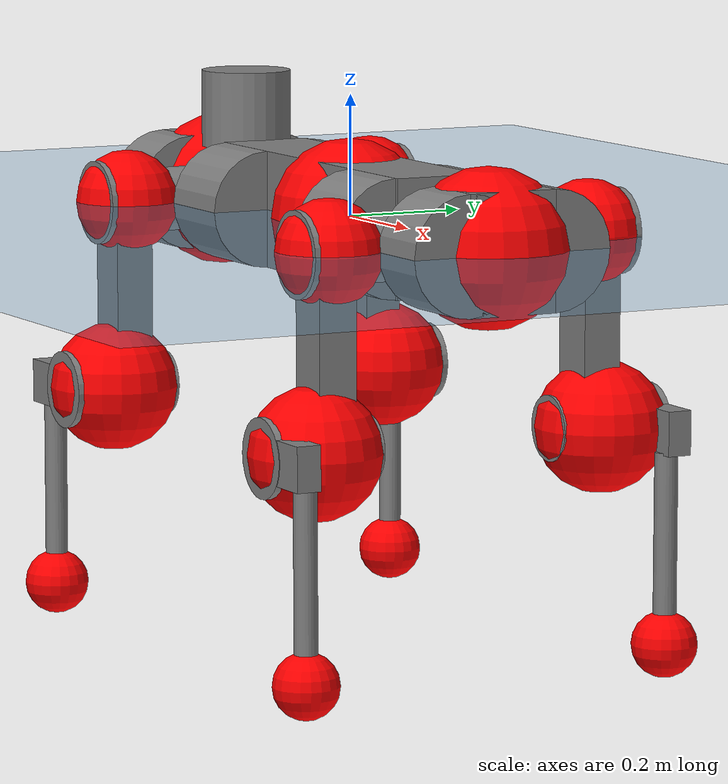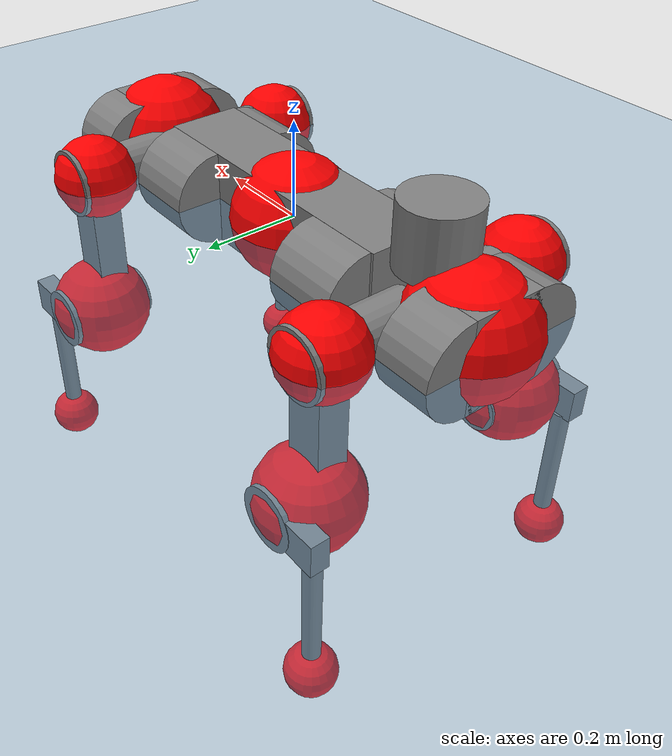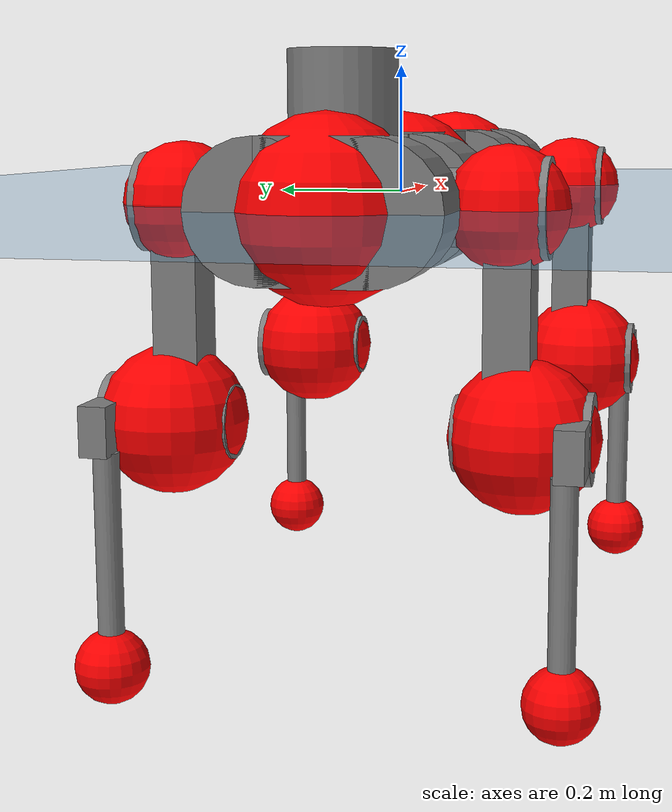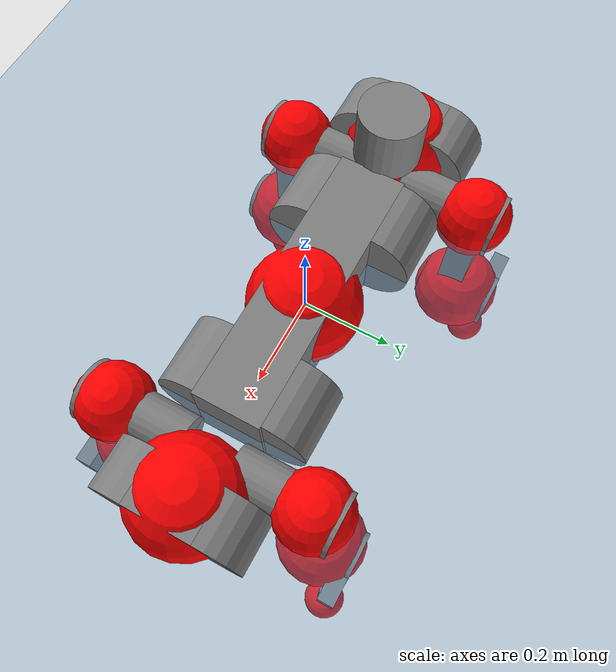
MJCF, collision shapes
<mujoco model="anymal_c">
  <compiler angle="radian" assetdir="assets" balanceinertia="true" inertiafromgeom="false"/>

  <option timestep="0.005" density="1.2" viscosity="2e-05"/>

  <size nkey="1"/>

  <visual>
    <quality shadowsize="8192"/>
    <map shadowclip="0.5"/>
  </visual>

  <default>
    <default class="/">
      <material specular="0" shininess="0.25"/>
      <geom contype="0" conaffinity="0" group="1" solref="-1000 -80"/>
      <site size="0.01 0.005 0.005" group="5"/>
      <general forcelimited="true" forcerange="-80 80" biastype="affine" gainprm="80" biasprm="0 -80 -2"/>
      <default class="anymal_c">
        <joint armature="0.01" damping="0.01" frictionloss="0.1"/>
        <default class="visual">
          <geom type="mesh" group="2"/>
          <default class="visual_zflip"/>
        </default>
        <default class="collision">
          <geom type="cylinder" group="3"/>
          <default class="foot">
            <geom size="0.03 0 0" type="sphere" condim="6" priority="1" friction="0.8 0.02 0.01" solimp="0.015 1 0.03"/>
          </default>
        </default>
      </default>
      <default class="reward_collision_sphere">
        <geom group="5" rgba="1 0 0 1"/>
      </default>
    </default>
  </default>

  <asset>
    <texture type="skybox" colorspace="auto" name="//unnamed_texture_0" builtin="gradient" rgb1="0.95 0.95 0.95" rgb2="0.95 0.95 0.95" width="100" height="600"/>
    <texture type="2d" colorspace="auto" name="texplane" builtin="checker" rgb1="0.345 0.575 0.748" rgb2="0.345 0.575 0.748" markrgb="1 1 1" width="512" height="512"/>
    <texture type="2d" colorspace="linear" name="base" file="base.png"/>
    <texture type="2d" colorspace="linear" name="top_shell" file="top_shell.png"/>
    <texture type="2d" colorspace="linear" name="bottom_shell" file="bottom_shell.png"/>
    <texture type="2d" colorspace="linear" name="remote" file="remote.png"/>
    <texture type="2d" colorspace="linear" name="hatch" file="hatch.png"/>
    <texture type="2d" colorspace="linear" name="handle" file="handle.png"/>
    <texture type="2d" colorspace="linear" name="face" file="face.png"/>
    <texture type="2d" colorspace="linear" name="battery" file="battery.png"/>
    <texture type="2d" colorspace="linear" name="lidar_cage" file="lidar_cage.png"/>
    <texture type="2d" colorspace="linear" name="depth_camera" file="depth_camera.png"/>
    <texture type="2d" colorspace="linear" name="wide_angle_camera" file="wide_angle_camera.png"/>
    <texture type="2d" colorspace="linear" name="lidar" file="lidar.png"/>
    <texture type="2d" colorspace="linear" name="drive" file="drive.png"/>
    <texture type="2d" colorspace="linear" name="hip_l" file="hip_l.png"/>
    <texture type="2d" colorspace="linear" name="shank_l" file="shank_l.png"/>
    <texture type="2d" colorspace="linear" name="foot" file="foot.png"/>
    <texture type="2d" colorspace="linear" name="thigh" file="thigh.png"/>
    <texture type="2d" colorspace="linear" name="shank_r" file="shank_r.png"/>
    <texture type="2d" colorspace="linear" name="hip_r" file="hip_r.png"/>
    <material name="MatPlane" class="/" texture="texplane" texuniform="true" texrepeat="2 2" specular="0.9" shininess="0.5"/>
    <material name="black_plastic" class="/" rgba="0.007 0.007 0.007 1"/>
    <material name="green" class="/" rgba="0.052 0.178 0.033 1"/>
    <material name="red" class="/" rgba="0.178 0.006 0.005 1"/>
    <material name="yellow" class="/" rgba="0.178 0.119 0.006 1"/>
    <material name="lwl" class="/" rgba="0.8 0.8 0.8 1"/>
    <material name="base" class="/" texture="base"/>
    <material name="top_shell" class="/" texture="top_shell"/>
    <material name="bottom_shell" class="/" texture="bottom_shell"/>
    <material name="hip_l" class="/" texture="hip_l"/>
    <material name="thigh" class="/" texture="thigh"/>
    <material name="shank_l" class="/" texture="shank_l"/>
    <material name="foot" class="/" texture="foot"/>
    <material name="hip_r" class="/" texture="hip_r"/>
    <material name="shank" class="/" texture="shank_r"/>
    <material name="hatch" class="/" texture="hatch"/>
    <material name="remote" class="/" texture="remote"/>
    <material name="handle" class="/" texture="handle"/>
    <material name="face" class="/" texture="face"/>
    <material name="depth_camera" class="/" texture="depth_camera"/>
    <material name="wide_angle_camera" class="/" texture="wide_angle_camera"/>
    <material name="battery" class="/" texture="battery"/>
    <material name="lidar_cage" class="/" texture="lidar_cage"/>
    <material name="lidar" class="/" texture="lidar"/>
    <material name="drive" class="/" texture="drive"/>
    <mesh name="base_0" class="/" file="base_0.obj"/>
    <mesh name="base_1" class="/" file="base_1.obj"/>
    <mesh name="base_2" class="/" file="base_2.obj"/>
    <mesh name="base_3" class="/" file="base_3.obj"/>
    <mesh name="base_4" class="/" file="base_4.obj"/>
    <mesh name="base_5" class="/" file="base_5.obj"/>
    <mesh name="top_shell" class="/" file="top_shell.obj"/>
    <mesh name="bottom_shell" class="/" file="bottom_shell.obj"/>
    <mesh name="remote" class="/" file="remote.obj"/>
    <mesh name="handle" class="/" file="handle.obj"/>
    <mesh name="face" class="/" file="face.obj"/>
    <mesh name="wide_angle_camera" class="/" file="wide_angle_camera.obj"/>
    <mesh name="depth_camera" class="/" file="depth_camera.obj"/>
    <mesh name="battery" class="/" file="battery.obj"/>
    <mesh name="lidar_cage" class="/" file="lidar_cage.obj"/>
    <mesh name="lidar" class="/" file="lidar.obj"/>
    <mesh name="drive" class="/" file="drive.obj"/>
    <mesh name="hip_l" class="/" file="hip_l.obj"/>
    <mesh name="thigh" class="/" file="thigh.obj"/>
    <mesh name="shank_l" class="/" file="shank_l.obj"/>
    <mesh name="foot" class="/" file="foot.obj"/>
    <mesh name="hip_r" class="/" file="hip_r.obj"/>
    <mesh name="hatch" class="/" file="hatch.obj"/>
    <mesh name="shank_r" class="/" file="shank_r.obj"/>
  </asset>

  <worldbody>
    <geom name="floor" class="/" size="100 100 0.125" type="plane" group="0" material="MatPlane"/>
    <light name="toplight_shadow" class="/" pos="0 0 5" dir="0.0990148 0.0990148 -0.990148" type="directional" ambient="0.04 0.04 0.04" diffuse="0.55 0.55 0.55" specular="0.12 0.12 0.12"/>
    <light name="toplight_fill" class="/" pos="0 0 5" dir="0.0990148 0.0990148 -0.990148" type="directional" castshadow="false" ambient="0.04 0.04 0.04" diffuse="0.3 0.3 0.3" specular="0.08 0.08 0.08"/>
    <body name="trunk" childclass="anymal_c" pos="-0.000394373 -0.00270582 -0.00103915" quat="1 1.44742e-05 -3.01605e-05 -3.45895e-05">
      <inertial pos="0.0030451 -0.00253445 0.0547218" quat="0.498029 0.498506 0.500591 0.502859" mass="23.2565" diaginertia="0.795656 0.901152 0.342627"/>
      <joint name="//unnamed_joint_0" type="free" armature="0" damping="0" frictionloss="0"/>
      <geom name="//unnamed_geom_1" class="visual" material="green" mesh="base_0"/>
      <geom name="//unnamed_geom_2" class="visual" material="yellow" mesh="base_1"/>
      <geom name="//unnamed_geom_3" class="visual" material="red" mesh="base_2"/>
      <geom name="//unnamed_geom_4" class="visual" material="black_plastic" mesh="base_3"/>
      <geom name="//unnamed_geom_5" class="visual" material="lwl" mesh="base_4"/>
      <geom name="//unnamed_geom_6" class="visual" material="base" mesh="base_5"/>
      <geom name="trunk_1" class="collision" size="0.313179 0.0755949 0.0971934" type="box"/>
      <geom name="trunk_2" class="collision" size="0.0971934 0.0782947" pos="0.229267 0.0761049 0" quat="0.707107 0 0.707107 0"/>
      <geom name="trunk_3" class="collision" size="0.0971934 0.0782947" pos="-0.229267 0.0761049 0" quat="0.707107 0 0.707107 0"/>
      <geom name="trunk_4" class="collision" size="0.0971934 0.0782947" pos="0.229267 -0.0761049 0" quat="0.707107 0 0.707107 0"/>
      <geom name="trunk_5" class="collision" size="0.0971934 0.0782947" pos="-0.229267 -0.0761049 0" quat="0.707107 0 0.707107 0"/>
      <geom name="//unnamed_geom_12" class="visual" material="top_shell" mesh="top_shell"/>
      <geom name="//unnamed_geom_13" class="visual" material="bottom_shell" mesh="bottom_shell"/>
      <geom name="//unnamed_geom_14" class="visual" material="remote" mesh="remote"/>
      <geom name="//unnamed_geom_15" class="visual" material="handle" mesh="handle"/>
      <geom name="//unnamed_geom_16" class="visual" pos="0.436925 0 0" quat="1 0 0 0" material="face" mesh="face"/>
      <geom name="trunk_6" class="collision" size="0.059396 0.0755949 0.0971934" pos="0.494901 0 0" type="box"/>
      <geom name="//unnamed_geom_18" class="collision" size="0.0971934 0.059396" pos="0.494901 0.0761049 0" quat="0.707107 0 0.707107 0"/>
      <geom name="//unnamed_geom_19" class="collision" size="0.0971934 0.059396" pos="0.494901 -0.0761049 0" quat="0.707107 0 0.707107 0"/>
      <geom name="//unnamed_geom_20" class="visual" pos="0.486628 0 -0.0324124" quat="0.965926 0 0.258819 0" material="depth_camera" mesh="depth_camera"/>
      <geom name="//unnamed_geom_21" class="visual" pos="0.540754 0 0.016444" material="wide_angle_camera" mesh="wide_angle_camera"/>
      <geom name="//unnamed_geom_22" class="visual_zflip" pos="-0.436925 0 0" quat="0 0 0 1" material="face" mesh="face"/>
      <geom name="trunk_7" class="collision" size="0.059396 0.0755949 0.0971934" pos="-0.494901 0 0" quat="0 0 0 1" type="box"/>
      <geom name="//unnamed_geom_24" class="collision" size="0.0971934 0.059396" pos="-0.494901 -0.0761049 0" quat="0 -0.707107 0 0.707107"/>
      <geom name="//unnamed_geom_25" class="collision" size="0.0971934 0.059396" pos="-0.494901 0.0761049 0" quat="0 -0.707107 0 0.707107"/>
      <geom name="//unnamed_geom_26" class="visual" pos="-0.486628 0 -0.0324124" quat="0 -0.258819 0 0.965926" material="depth_camera" mesh="depth_camera"/>
      <geom name="//unnamed_geom_27" class="visual_zflip" pos="-0.540754 0 0.016444" quat="0 0 0 1" material="wide_angle_camera" mesh="wide_angle_camera"/>
      <geom name="//unnamed_geom_28" class="visual" material="battery" mesh="battery"/>
      <geom name="//unnamed_geom_29" class="visual" pos="0 0.0835646 0.0315733" quat="0.683013 -0.183013 0.183013 0.683013" material="depth_camera" mesh="depth_camera"/>
      <geom name="//unnamed_geom_30" class="visual" pos="0 -0.0835646 0.0315733" quat="0.683013 0.183013 0.183013 -0.683013" material="depth_camera" mesh="depth_camera"/>
      <geom name="//unnamed_geom_31" class="visual" pos="-0.383693 0 0.0807373" quat="1 0 0 0" material="lidar_cage" mesh="lidar_cage"/>
      <geom name="trunk_8" class="collision" size="0.0755949 0.0647956" pos="-0.383693 0 0.146645"/>
      <geom name="//unnamed_geom_33" class="visual" pos="-0.383693 1.30081e-05 0.156202" quat="0.707107 0 0 -0.707107" material="lidar" mesh="lidar"/>
      <geom name="//unnamed_geom_34" class="visual" pos="0.316125 0.113074 -1.94142e-10" quat="0.258819 0.965926 0 0" material="drive" mesh="drive"/>
      <geom name="//unnamed_geom_35" class="visual" pos="0.316125 -0.113074 1.94142e-10" quat="0.258819 -0.965926 0 0" material="drive" mesh="drive"/>
      <geom name="//unnamed_geom_36" class="visual" pos="-0.316125 0.113074 1.94142e-10" quat="0 0 0.965926 -0.258819" material="drive" mesh="drive"/>
      <geom name="//unnamed_geom_37" class="visual" pos="-0.316125 -0.113074 -1.94142e-10" quat="0 0 -0.965926 -0.258819" material="drive" mesh="drive"/>
      <geom name="//unnamed_geom_38" class="visual" pos="0.122276 0 0.0801881" quat="1 0 0 0" material="hatch" mesh="hatch"/>
      <geom name="//unnamed_geom_39" class="reward_collision_sphere" size="0.129591"/>
      <geom name="//unnamed_geom_40" class="reward_collision_sphere" size="0.129591" pos="0.474346 0 0"/>
      <geom name="//unnamed_geom_41" class="reward_collision_sphere" size="0.129591" pos="-0.474346 0 0"/>
      <site name="imu" pos="0.276074 0.022545 0.0372926" size="0.0107993"/>
      <camera name="track" pos="0 -2.17442 0" quat="0.707107 0.707107 0 0" mode="trackcom"/>
      <camera name="ego_camera" pos="0.474346 0 -0.0439387" quat="-0.5 -0.5 0.5 0.5"/>
      <body name="LF_HIP" pos="0.319378 0.114227 0.00214099" quat="0.25827 0.966072 0.00114992 -2.38947e-05">
        <inertial pos="0.0606301 -0.0164588 -0.00662992" quat="-0.128707 0.7132 -0.135832 0.675522" mass="3.3858" diaginertia="0.00761562 0.00717148 0.00523415"/>
        <joint name="LF_HAA" pos="0 0 0" axis="1 -0.000651082 -0.000592164" stiffness="0.00620955" range="-0.703999 0.537778" armature="0.0110628" damping="0" frictionloss="0.123277"/>
        <geom name="//unnamed_geom_42" class="visual" pos="0 -1.14205e-05 1.87581e-06" quat="0.258819 -0.965926 0 0" material="hip_l" mesh="hip_l"/>
        <geom name="//unnamed_geom_43" class="visual" pos="0.0631407 -0.0769484 -0.0445094" quat="0.183013 -0.683013 0.683013 0.183013" material="drive" mesh="drive"/>
        <geom name="//unnamed_geom_44" class="collision" size="0.0539964 0.0755949" pos="0.0631407 -0.0130028 -0.00758491" quat="-0.353553 -0.612372 0.612372 -0.353553"/>
        <body name="LF_THIGH" pos="0.0635546 -0.0780852 -0.0460767" quat="0.183365 -0.682652 0.683602 0.181799">
          <inertial pos="0.0354581 0.00281319 -0.270537" quat="0.993787 0.00304817 -0.0724853 0.0844006" mass="3.86583" diaginertia="0.0385651 0.0449212 0.00656324"/>
          <joint name="LF_HFE" pos="0 0 0" axis="0.99992 0.0123923 0.00241662" range="-3.10078 3.17666" armature="0.0121818" damping="0.00816219" frictionloss="0.116983"/>
          <geom name="//unnamed_geom_45" class="visual" pos="-0.000658763 -1.03806e-06 0" quat="0.707107 0 0 -0.707107" material="thigh" mesh="thigh"/>
          <geom name="//unnamed_geom_46" class="collision" size="0.0701953 0.0431971" pos="0.0421641 0 0" quat="0.5 0.5 -0.5 -0.5"/>
          <geom name="//unnamed_geom_47" class="collision" size="0.0404973 0.0323978 0.152609" pos="0.0316231 0 -0.155229" quat="0.707107 0 0 -0.707107" type="box"/>
          <geom name="//unnamed_geom_48" class="visual" pos="0.105726 0 -0.313063" quat="1 0 0 0" material="drive" mesh="drive"/>
          <geom name="//unnamed_geom_49" class="collision" size="0.0539964 0.0755949" pos="0.0319393 0 -0.313063" quat="0.707107 0 0.707107 0"/>
          <geom name="//unnamed_geom_50" class="reward_collision_sphere" size="0.0863942" pos="0.0263526 0 0"/>
          <body name="LF_SHANK" pos="0.10447 -0.001943 -0.315422" quat="0.999999 0.00111216 -0.000440682 0.000646319">
            <inertial pos="0.0086214 -0.0665343 -0.0898684" quat="0.992968 -0.115321 -8.71897e-05 -0.0267359" mass="0.754351" diaginertia="0.0128457 0.0144012 0.00176705"/>
            <joint name="LF_KFE" pos="0 0 0" axis="0.999983 -0.000604413 0.00580213" range="-3.16714 3.14965" armature="0.0092819" damping="0.010184" frictionloss="0.109257"/>
            <geom name="//unnamed_geom_51" class="visual" pos="-0.000214808 -0.00114537 0" quat="0.707107 0 0 -0.707107" material="shank_l" mesh="shank_l"/>
            <geom name="LF_kfe_act" class="collision" size="0.0647956 0.0215985" pos="0.021082 0 0" quat="0.5 0.5 -0.5 -0.5"/>
            <geom name="//unnamed_geom_53" class="collision" size="0.0620947 0.0364475 0.0205186" pos="0.021082 -0.0625136 0" quat="0.5 0.5 -0.5 -0.5" type="box"/>
            <geom name="//unnamed_geom_54" class="visual" pos="0.0137561 -0.0959894 -0.371249" quat="0.382683 0 0 -0.92388" material="foot" mesh="foot"/>
            <geom name="LF_calf" class="collision" size="0.0188987 0.152542" pos="0.013756 -0.0956203 -0.185624" quat="0.707107 0 0 -0.707107"/>
            <geom name="LF_foot" class="foot" size="0.0303072" pos="0.013756 -0.0956203 -0.346533" quat="0.707107 0 0 -0.707107"/>
            <geom name="//unnamed_geom_57" class="reward_collision_sphere" size="0.107993" pos="-0.0527051 0 0"/>
            <geom name="//unnamed_geom_58" class="reward_collision_sphere" size="0.0539964" pos="0.013756 -0.0956203 -0.346533"/>
            <site name="LF_foot" class="foot" pos="0.013756 -0.0956203 -0.346533" quat="0.707107 0 0 -0.707107" size="0.0107993"/>
          </body>
        </body>
      </body>
      <body name="RF_HIP" pos="0.315859 -0.115308 -0.00181377" quat="0.259077 -0.965856 -0.000494396 4.29252e-05">
        <inertial pos="0.0584072 0.0171773 -0.00903668" quat="0.134387 0.678958 0.131864 0.709625" mass="3.35976" diaginertia="0.00743501 0.00731174 0.00536725"/>
        <joint name="RF_HAA" pos="0 0 0" axis="0.999875 -0.0100963 0.0121681" range="-0.496184 0.719676" armature="0.0112741" damping="0.0151378" frictionloss="0.115654"/>
        <geom name="//unnamed_geom_59" class="visual" pos="0 1.14204e-05 1.8758e-06" quat="0.258819 0.965926 0 0" material="hip_r" mesh="hip_r"/>
        <geom name="//unnamed_geom_60" class="visual" pos="0.0631407 0.0769484 -0.0445094" quat="0.183013 0.683013 0.683013 -0.183013" material="drive" mesh="drive"/>
        <geom name="//unnamed_geom_61" class="collision" size="0.0539964 0.0755949" pos="0.0631407 0.0130028 -0.00758491" quat="-0.353553 0.612372 0.612372 0.353553"/>
        <body name="RF_THIGH" pos="0.0651113 0.0793572 -0.0434257" quat="0.182029 0.683655 0.68291 -0.181978">
          <inertial pos="0.0301762 -0.00105383 -0.268987" quat="0.991112 -0.00365757 -0.0864156 0.101074" mass="4.12931" diaginertia="0.0400954 0.046944 0.00675184"/>
          <joint name="RF_HFE" pos="0 0 0" axis="0.999967 0.00040325 0.00816077" range="-3.17704 3.13565" armature="0.0102444" damping="0.0131915" frictionloss="0.108168"/>
          <geom name="//unnamed_geom_62" class="visual" pos="-0.000658763 -1.03806e-06 0" quat="0.707107 0 0 -0.707107" material="thigh" mesh="thigh"/>
          <geom name="//unnamed_geom_63" class="collision" size="0.0701953 0.0431971" pos="0.0421641 0 0" quat="0.5 0.5 0.5 0.5"/>
          <geom name="//unnamed_geom_64" class="collision" size="0.0404973 0.0323978 0.152609" pos="0.0316231 0 -0.155229" quat="0.707107 0 0 0.707107" type="box"/>
          <geom name="//unnamed_geom_65" class="visual" pos="0.105726 0 -0.313063" quat="1 0 0 0" material="drive" mesh="drive"/>
          <geom name="//unnamed_geom_66" class="collision" size="0.0539964 0.0755949" pos="0.0319393 0 -0.313063" quat="0.707107 0 0.707107 0"/>
          <geom name="//unnamed_geom_67" class="reward_collision_sphere" size="0.0863942" pos="0.0263526 0 0"/>
          <body name="RF_SHANK" pos="0.103791 -0.00136991 -0.315605" quat="0.999999 -0.00036452 0.0010727 -0.000432465">
            <inertial pos="0.00777543 0.0667966 -0.0855874" quat="0.991659 0.127613 -0.00197078 0.0179849" mass="0.73237" diaginertia="0.0132478 0.0140468 0.00181694"/>
            <joint name="RF_KFE" pos="0 0 0" axis="0.999969 -0.00773488 0.00165733" range="-3.14009 3.14818" armature="0.0117141" damping="0.0192461" frictionloss="0.0950979"/>
            <geom name="//unnamed_geom_68" class="visual" pos="-0.000214807 0.00114537 0" quat="0.707107 0 0 0.707107" material="shank" mesh="shank_r"/>
            <geom name="RF_kfe_act" class="collision" size="0.0647956 0.0215985" pos="0.021082 0 0" quat="0.5 0.5 0.5 0.5"/>
            <geom name="//unnamed_geom_70" class="collision" size="0.0620947 0.0364475 0.0205186" pos="0.021082 0.0625136 0" quat="0.5 0.5 0.5 0.5" type="box"/>
            <geom name="//unnamed_geom_71" class="visual" pos="0.013756 0.0959894 -0.371249" quat="0.382683 0 0 0.92388" material="foot" mesh="foot"/>
            <geom name="RF_calf" class="collision" size="0.0188987 0.152542" pos="0.013756 0.0956203 -0.185624" quat="0.707107 0 0 0.707107"/>
            <geom name="RF_foot" class="foot" size="0.0256428" pos="0.013756 0.0956203 -0.346533" quat="0.707107 0 0 0.707107"/>
            <geom name="//unnamed_geom_74" class="reward_collision_sphere" size="0.107993" pos="-0.0527051 0 0"/>
            <geom name="//unnamed_geom_75" class="reward_collision_sphere" size="0.0539964" pos="0.013756 0.0956203 -0.346533"/>
            <site name="RF_foot" class="foot" pos="0.013756 0.0956203 -0.346533" quat="0.707107 0 0 0.707107" size="0.0107993"/>
          </body>
        </body>
      </body>
      <body name="LH_HIP" pos="-0.316284 0.113471 0.00179041" quat="0.00014275 -0.000998184 0.965907 -0.258886">
        <inertial pos="0.0604125 0.0139534 -0.00656725" quat="0.139267 0.679224 0.127682 0.709194" mass="3.62588" diaginertia="0.00781565 0.00765697 0.00535842"/>
        <joint name="LH_HAA" pos="0 0 0" axis="1 -0.000126169 0.000247033" range="-0.496368 0.685842" armature="0.0107862" damping="0.00403101" frictionloss="0.106362"/>
        <geom name="//unnamed_geom_76" class="visual" pos="0 1.14204e-05 1.8758e-06" quat="-0.258819 -0.965926 0 0" material="hip_r" mesh="hip_r"/>
        <geom name="//unnamed_geom_77" class="visual" pos="0.0631407 0.0769484 -0.0445094" quat="0.183013 0.683013 0.683013 -0.183013" material="drive" mesh="drive"/>
        <geom name="//unnamed_geom_78" class="collision" size="0.0539964 0.0755949" pos="0.0631407 0.0130028 -0.00758491" quat="-0.353553 0.612372 0.612372 0.353553"/>
        <body name="LH_THIGH" pos="0.0596578 0.0811788 -0.0466491" quat="0.182862 0.683072 0.682932 -0.183242">
          <inertial pos="0.033065 0.000983083 -0.271365" quat="0.992415 -0.0063292 -0.0920128 0.0812831" mass="3.98736" diaginertia="0.0398935 0.0474693 0.00691408"/>
          <joint name="LH_HFE" pos="0 0 0" axis="0.999995 -0.00277869 0.00129951" stiffness="0.00253949" range="-3.19599 3.19572" armature="0.00993798" damping="0" frictionloss="0.113701"/>
          <geom name="//unnamed_geom_79" class="visual" pos="-0.000658763 -1.03806e-06 0" quat="0.707107 0 0 -0.707107" material="thigh" mesh="thigh"/>
          <geom name="//unnamed_geom_80" class="collision" size="0.0701953 0.0431971" pos="0.0421641 0 0" quat="0.5 0.5 -0.5 -0.5"/>
          <geom name="//unnamed_geom_81" class="collision" size="0.0404973 0.0323978 0.152609" pos="0.0316231 0 -0.155229" quat="0.707107 0 0 -0.707107" type="box"/>
          <geom name="//unnamed_geom_82" class="visual" pos="0.105726 0 -0.313063" quat="1 0 0 0" material="drive" mesh="drive"/>
          <geom name="//unnamed_geom_83" class="collision" size="0.0539964 0.0755949" pos="0.0319393 0 -0.313063" quat="0.707107 0 0.707107 0"/>
          <geom name="//unnamed_geom_84" class="reward_collision_sphere" size="0.0863942" pos="0.0263526 0 0"/>
          <body name="LH_SHANK" pos="0.103032 -0.000576186 -0.311941" quat="1 -1.48714e-05 0.000202847 0.000191259">
            <inertial pos="0.00682892 0.0666725 -0.0876861" quat="0.992973 0.11628 -0.00102413 0.0219469" mass="0.793367" diaginertia="0.0140755 0.0146561 0.0018446"/>
            <joint name="LH_KFE" pos="0 0 0" axis="0.999857 -0.016301 -0.00459077" stiffness="0.000602605" range="-3.1186 3.08565" armature="0.010739" damping="0" frictionloss="0.10655"/>
            <geom name="//unnamed_geom_85" class="visual" pos="-0.000214807 0.00114537 0" quat="-0.707107 0 0 -0.707107" material="shank" mesh="shank_r"/>
            <geom name="LH_kfe_act" class="collision" size="0.0647956 0.0215985" pos="0.021082 0 0" quat="0.5 0.5 -0.5 -0.5"/>
            <geom name="//unnamed_geom_87" class="collision" size="0.0620947 0.0364475 0.0205186" pos="0.021082 0.0625136 0" quat="0.5 0.5 -0.5 -0.5" type="box"/>
            <geom name="//unnamed_geom_88" class="visual" pos="0.013756 0.0959894 -0.371249" quat="-0.382683 0 0 -0.92388" material="foot" mesh="foot"/>
            <geom name="LH_calf" class="collision" size="0.0188987 0.152542" pos="0.013756 0.0956203 -0.185624" quat="0.707107 0 0 -0.707107"/>
            <geom name="LH_foot" class="foot" size="0.0355513" pos="0.013756 0.0956203 -0.346533" quat="0.707107 0 0 -0.707107"/>
            <geom name="//unnamed_geom_91" class="reward_collision_sphere" size="0.107993" pos="-0.0527051 0 0"/>
            <geom name="//unnamed_geom_92" class="reward_collision_sphere" size="0.0539964" pos="0.013756 0.0956203 -0.346533"/>
            <site name="LH_foot" class="foot" pos="0.013756 0.0956203 -0.346533" quat="0.707107 0 0 -0.707107" size="0.0107993"/>
          </body>
        </body>
      </body>
      <body name="RH_HIP" pos="-0.315479 -0.11213 -0.00103245" quat="-0.000537626 0.00104026 -0.965808 -0.259256">
        <inertial pos="0.0602743 -0.0142988 -0.0121287" quat="-0.127856 0.710086 -0.13664 0.678794" mass="3.59487" diaginertia="0.00815091 0.00788201 0.00556815"/>
        <joint name="RH_HAA" pos="0 0 0" axis="0.999945 -0.0098822 -0.00353055" stiffness="0.00206242" range="-0.705054 0.453267" armature="0.0108774" damping="0.011719" frictionloss="0.102408"/>
        <geom name="//unnamed_geom_93" class="visual" pos="0 -1.14205e-05 1.87581e-06" quat="-0.258819 0.965926 0 0" material="hip_l" mesh="hip_l"/>
        <geom name="//unnamed_geom_94" class="visual" pos="0.0631407 -0.0769484 -0.0445094" quat="-0.183013 0.683013 -0.683013 -0.183013" material="drive" mesh="drive"/>
        <geom name="//unnamed_geom_95" class="collision" size="0.0539964 0.0755949" pos="0.0631407 -0.0130028 -0.00758491" quat="0.353553 0.612372 -0.612372 0.353553"/>
        <body name="RH_THIGH" pos="0.0624006 -0.0763071 -0.0445684" quat="-0.182413 0.682919 -0.68306 -0.183782">
          <inertial pos="0.0325926 -0.00196027 -0.266927" quat="0.993162 -0.00519784 -0.0807266 0.0841713" mass="3.7064" diaginertia="0.0375174 0.0436704 0.00646187"/>
          <joint name="RH_HFE" pos="0 0 0" axis="0.999951 0.00327088 -0.00939436" range="-3.14933 3.19948" armature="0.0111894" damping="0.00903487" frictionloss="0.105429"/>
          <geom name="//unnamed_geom_96" class="visual" pos="-0.000658763 -1.03806e-06 0" quat="0.707107 0 0 -0.707107" material="thigh" mesh="thigh"/>
          <geom name="//unnamed_geom_97" class="collision" size="0.0701953 0.0431971" pos="0.0421641 0 0" quat="0.5 0.5 0.5 0.5"/>
          <geom name="//unnamed_geom_98" class="collision" size="0.0404973 0.0323978 0.152609" pos="0.0316231 0 -0.155229" quat="0.707107 0 0 0.707107" type="box"/>
          <geom name="//unnamed_geom_99" class="visual" pos="0.105726 0 -0.313063" quat="1 0 0 0" material="drive" mesh="drive"/>
          <geom name="//unnamed_geom_100" class="collision" size="0.0539964 0.0755949" pos="0.0319393 0 -0.313063" quat="0.707107 0 0.707107 0"/>
          <geom name="//unnamed_geom_101" class="reward_collision_sphere" size="0.0863942" pos="0.0263526 0 0"/>
          <body name="RH_SHANK" pos="0.105479 0.000117048 -0.313717" quat="0.999999 -1.33363e-05 0.000177069 0.00116788">
            <inertial pos="0.00656201 -0.0665113 -0.0894736" quat="0.99234 -0.121581 -0.00579096 -0.0211058" mass="0.753152" diaginertia="0.0136252 0.0139561 0.00179503"/>
            <joint name="RH_KFE" pos="0 0 0" axis="0.999967 0.00481147 0.00652126" range="-3.18148 3.17289" armature="0.0096548" damping="0.00870951" frictionloss="0.110535"/>
            <geom name="//unnamed_geom_102" class="visual" pos="-0.000214808 -0.00114537 0" quat="0.707107 0 0 -0.707107" material="shank_l" mesh="shank_l"/>
            <geom name="RH_kfe_act" class="collision" size="0.0647956 0.0215985" pos="0.021082 0 0" quat="0.5 0.5 0.5 0.5"/>
            <geom name="//unnamed_geom_104" class="collision" size="0.0620947 0.0364475 0.0205186" pos="0.021082 -0.0625136 0" quat="0.5 0.5 0.5 0.5" type="box"/>
            <geom name="//unnamed_geom_105" class="visual" pos="0.0137561 -0.0959894 -0.371249" quat="0.382683 0 0 -0.92388" material="foot" mesh="foot"/>
            <geom name="RH_calf" class="collision" size="0.0188987 0.152542" pos="0.013756 -0.0956203 -0.185624" quat="0.707107 0 0 0.707107"/>
            <geom name="RH_foot" class="foot" size="0.0280155" pos="0.013756 -0.0956203 -0.346533" quat="0.707107 0 0 0.707107"/>
            <geom name="//unnamed_geom_108" class="reward_collision_sphere" size="0.107993" pos="-0.0527051 0 0"/>
            <geom name="//unnamed_geom_109" class="reward_collision_sphere" size="0.0539964" pos="0.013756 -0.0956203 -0.346533"/>
            <site name="RH_foot" class="foot" pos="0.013756 -0.0956203 -0.346533" quat="0.707107 0 0 0.707107" size="0.0107993"/>
          </body>
        </body>
      </body>
    </body>
  </worldbody>

  <contact>
    <pair class="/" geom1="floor" geom2="LF_foot" name="//unnamed_contact_0"/>
    <pair class="/" geom1="floor" geom2="RF_foot" name="//unnamed_contact_1"/>
    <pair class="/" geom1="floor" geom2="LH_foot" name="//unnamed_contact_2"/>
    <pair class="/" geom1="floor" geom2="RH_foot" name="//unnamed_contact_3"/>
  </contact>

  <actuator>
    <general name="LF_HAA" class="/" joint="LF_HAA" forcerange="-88.9142 88.9142" gainprm="90.7587" biasprm="0 -90.7587 -2.29026"/>
    <general name="LF_HFE" class="/" joint="LF_HFE" forcerange="-77.1956 77.1956" gainprm="90.7587" biasprm="0 -90.7587 -2.29026"/>
    <general name="LF_KFE" class="/" joint="LF_KFE" forcerange="-86.669 86.669" gainprm="90.7587" biasprm="0 -90.7587 -2.29026"/>
    <general name="RF_HAA" class="/" joint="RF_HAA" forcerange="-92.4751 92.4751" gainprm="90.7587" biasprm="0 -90.7587 -2.29026"/>
    <general name="RF_HFE" class="/" joint="RF_HFE" forcerange="-93.081 93.081" gainprm="90.7587" biasprm="0 -90.7587 -2.29026"/>
    <general name="RF_KFE" class="/" joint="RF_KFE" forcerange="-96.1339 96.1339" gainprm="90.7587" biasprm="0 -90.7587 -2.29026"/>
    <general name="LH_HAA" class="/" joint="LH_HAA" forcerange="-88.4614 88.4614" gainprm="90.7587" biasprm="0 -90.7587 -2.29026"/>
    <general name="LH_HFE" class="/" joint="LH_HFE" forcerange="-86.0009 86.0009" gainprm="90.7587" biasprm="0 -90.7587 -2.29026"/>
    <general name="LH_KFE" class="/" joint="LH_KFE" forcerange="-79.6414 79.6414" gainprm="90.7587" biasprm="0 -90.7587 -2.29026"/>
    <general name="RH_HAA" class="/" joint="RH_HAA" forcerange="-81.879 81.879" gainprm="90.7587" biasprm="0 -90.7587 -2.29026"/>
    <general name="RH_HFE" class="/" joint="RH_HFE" forcerange="-89.302 89.302" gainprm="90.7587" biasprm="0 -90.7587 -2.29026"/>
    <general name="RH_KFE" class="/" joint="RH_KFE" forcerange="-86.1852 86.1852" gainprm="90.7587" biasprm="0 -90.7587 -2.29026"/>
  </actuator>

  <sensor>
    <gyro site="imu" name="imu_angular_velocity"/>
    <velocimeter site="imu" name="imu_linear_velocity"/>
    <framelinvel objtype="site" objname="LF_foot" name="LF_foot_global_linear_velocity"/>
    <framelinvel objtype="site" objname="RF_foot" name="RF_foot_global_linear_velocity"/>
    <framelinvel objtype="site" objname="LH_foot" name="LH_foot_global_linear_velocity"/>
    <framelinvel objtype="site" objname="RH_foot" name="RH_foot_global_linear_velocity"/>
  </sensor>

  <keyframe>
    <key name="home" qpos="0 0 0.55 1 0 0 0 0 0.4 -0.8 0 -0.4 0.8 0 -0.4 0.8 0 0.4 -0.8"/>
  </keyframe>
</mujoco>
